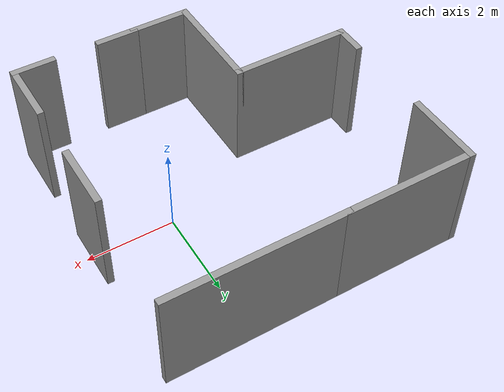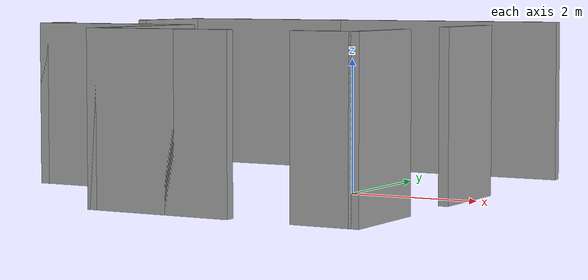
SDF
<?xml version='1.0'?>
<sdf version='1.7'>
  <model name='labirynt'>
    <pose>-1.4836 -0.036275 0 0 -0 0</pose>
    <link name='Wall_11'>
      <collision name='Wall_11_Collision'>
        <geometry>
          <box>
            <size>1.5 0.15 2.5</size>
          </box>
        </geometry>
        <pose>0 0 1.25 0 -0 0</pose>
      </collision>
      <visual name='Wall_11_Visual'>
        <pose>0 0 1.25 0 -0 0</pose>
        <geometry>
          <box>
            <size>1.5 0.15 2.5</size>
          </box>
        </geometry>
        <material>
          <script>
            <uri>file://media/materials/scripts/gazebo.material</uri>
            <name>Gazebo/Grey</name>
          </script>
          <ambient>1 1 1 1</ambient>
        </material>
        <meta>
          <layer>0</layer>
        </meta>
      </visual>
      <pose>3.3 0.05 0 0 -0 1.5708</pose>
    </link>
    <link name='Wall_15'>
      <collision name='Wall_15_Collision'>
        <geometry>
          <box>
            <size>0.75 0.15 2.5</size>
          </box>
        </geometry>
        <pose>0 0 1.25 0 -0 0</pose>
      </collision>
      <visual name='Wall_15_Visual'>
        <pose>0 0 1.25 0 -0 0</pose>
        <geometry>
          <box>
            <size>0.75 0.15 2.5</size>
          </box>
        </geometry>
        <material>
          <script>
            <uri>file://media/materials/scripts/gazebo.material</uri>
            <name>Gazebo/Grey</name>
          </script>
          <ambient>1 1 1 1</ambient>
        </material>
        <meta>
          <layer>0</layer>
        </meta>
      </visual>
      <pose>-3.35 -0.675 0 0 -0 1.5708</pose>
    </link>
    <link name='Wall_17'>
      <collision name='Wall_17_Collision'>
        <geometry>
          <box>
            <size>1.75 0.15 2.5</size>
          </box>
        </geometry>
        <pose>0 0 1.25 0 -0 0</pose>
      </collision>
      <visual name='Wall_17_Visual'>
        <pose>0 0 1.25 0 -0 0</pose>
        <geometry>
          <box>
            <size>1.75 0.15 2.5</size>
          </box>
        </geometry>
        <material>
          <script>
            <uri>file://media/materials/scripts/gazebo.material</uri>
            <name>Gazebo/Grey</name>
          </script>
          <ambient>1 1 1 1</ambient>
        </material>
        <meta>
          <layer>0</layer>
        </meta>
      </visual>
      <pose>-3.35 2.525 0 0 -0 1.5708</pose>
    </link>
    <link name='Wall_19'>
      <collision name='Wall_19_Collision'>
        <geometry>
          <box>
            <size>3 0.15 2.5</size>
          </box>
        </geometry>
        <pose>0 0 1.25 0 -0 0</pose>
      </collision>
      <visual name='Wall_19_Visual'>
        <pose>0 0 1.25 0 -0 0</pose>
        <geometry>
          <box>
            <size>3 0.15 2.5</size>
          </box>
        </geometry>
        <material>
          <script>
            <uri>file://media/materials/scripts/gazebo.material</uri>
            <name>Gazebo/Grey</name>
          </script>
          <ambient>1 1 1 1</ambient>
        </material>
        <meta>
          <layer>0</layer>
        </meta>
      </visual>
      <pose>-1.925 3.325 0 0 -0 0</pose>
    </link>
    <link name='Wall_20'>
      <collision name='Wall_20_Collision'>
        <geometry>
          <box>
            <size>4 0.15 2.5</size>
          </box>
        </geometry>
        <pose>0 0 1.25 0 -0 0</pose>
      </collision>
      <visual name='Wall_20_Visual'>
        <pose>0 0 1.25 0 -0 0</pose>
        <geometry>
          <box>
            <size>4 0.15 2.5</size>
          </box>
        </geometry>
        <material>
          <script>
            <uri>file://media/materials/scripts/gazebo.material</uri>
            <name>Gazebo/Grey</name>
          </script>
          <ambient>1 1 1 1</ambient>
        </material>
        <meta>
          <layer>0</layer>
        </meta>
      </visual>
      <pose>1.425 3.325 0 0 -0 0</pose>
    </link>
    <link name='Wall_22'>
      <collision name='Wall_22_Collision'>
        <geometry>
          <box>
            <size>2.75 0.15 2.5</size>
          </box>
        </geometry>
        <pose>0 0 1.25 0 -0 0</pose>
      </collision>
      <visual name='Wall_22_Visual'>
        <pose>0 0 1.25 0 -0 0</pose>
        <geometry>
          <box>
            <size>2.75 0.15 2.5</size>
          </box>
        </geometry>
        <material>
          <script>
            <uri>file://media/materials/scripts/gazebo.material</uri>
            <name>Gazebo/Grey</name>
          </script>
          <ambient>1 1 1 1</ambient>
        </material>
        <meta>
          <layer>0</layer>
        </meta>
      </visual>
      <pose>-2.05 -0.975 0 0 -0 0</pose>
    </link>
    <link name='Wall_23'>
      <collision name='Wall_23_Collision'>
        <geometry>
          <box>
            <size>2.5 0.15 2.5</size>
          </box>
        </geometry>
        <pose>0 0 1.25 0 -0 0</pose>
      </collision>
      <visual name='Wall_23_Visual'>
        <pose>0 0 1.25 0 -0 0</pose>
        <geometry>
          <box>
            <size>2.5 0.15 2.5</size>
          </box>
        </geometry>
        <material>
          <script>
            <uri>file://media/materials/scripts/gazebo.material</uri>
            <name>Gazebo/Grey</name>
          </script>
          <ambient>1 1 1 1</ambient>
        </material>
        <meta>
          <layer>0</layer>
        </meta>
      </visual>
      <pose>-0.75 -2.15 0 0 -0 -1.5708</pose>
    </link>
    <link name='Wall_24'>
      <collision name='Wall_24_Collision'>
        <geometry>
          <box>
            <size>1.41749 0.15 2.5</size>
          </box>
        </geometry>
        <pose>0 0 1.25 0 -0 0</pose>
      </collision>
      <visual name='Wall_24_Visual'>
        <pose>0 0 1.25 0 -0 0</pose>
        <geometry>
          <box>
            <size>1.41749 0.15 2.5</size>
          </box>
        </geometry>
        <material>
          <script>
            <uri>file://media/materials/scripts/gazebo.material</uri>
            <name>Gazebo/Grey</name>
          </script>
          <ambient>1 1 1 1</ambient>
        </material>
        <meta>
          <layer>0</layer>
        </meta>
      </visual>
      <pose>-0.116255 -3.325 0 0 -0 0</pose>
    </link>
    <link name='Wall_5'>
      <collision name='Wall_5_Collision'>
        <geometry>
          <box>
            <size>1 0.15 2.5</size>
          </box>
        </geometry>
        <pose>0 0 1.25 0 -0 0</pose>
      </collision>
      <visual name='Wall_5_Visual'>
        <pose>0 0 1.25 0 -0 0</pose>
        <geometry>
          <box>
            <size>1 0.15 2.5</size>
          </box>
        </geometry>
        <material>
          <script>
            <uri>file://media/materials/scripts/gazebo.material</uri>
            <name>Gazebo/Grey</name>
          </script>
          <ambient>1 1 1 1</ambient>
        </material>
        <meta>
          <layer>0</layer>
        </meta>
      </visual>
      <pose>2.875 -3.325 0 0 -0 3.14159</pose>
    </link>
    <link name='Wall_7'>
      <collision name='Wall_7_Collision'>
        <geometry>
          <box>
            <size>0.982694 0.15 2.5</size>
          </box>
        </geometry>
        <pose>0 0 1.25 0 -0 0</pose>
      </collision>
      <visual name='Wall_7_Visual'>
        <pose>0 0 1.25 0 -0 0</pose>
        <geometry>
          <box>
            <size>0.982694 0.15 2.5</size>
          </box>
        </geometry>
        <material>
          <script>
            <uri>file://media/materials/scripts/gazebo.material</uri>
            <name>Gazebo/Grey</name>
          </script>
          <ambient>1 1 1 1</ambient>
        </material>
        <meta>
          <layer>0</layer>
        </meta>
      </visual>
      <pose>0.933745 -3.325 0 0 -0 3.14159</pose>
    </link>
    <link name='Wall_9'>
      <collision name='Wall_9_Collision'>
        <geometry>
          <box>
            <size>1.5 0.15 2.5</size>
          </box>
        </geometry>
        <pose>0 0 1.25 0 -0 0</pose>
      </collision>
      <visual name='Wall_9_Visual'>
        <pose>0 0 1.25 0 -0 0</pose>
        <geometry>
          <box>
            <size>1.5 0.15 2.5</size>
          </box>
        </geometry>
        <material>
          <script>
            <uri>file://media/materials/scripts/gazebo.material</uri>
            <name>Gazebo/Grey</name>
          </script>
          <ambient>1 1 1 1</ambient>
        </material>
        <meta>
          <layer>0</layer>
        </meta>
      </visual>
      <pose>3.3 -2.65 0 0 -0 1.5708</pose>
    </link>
    <static>1</static>
  </model>
</sdf>
